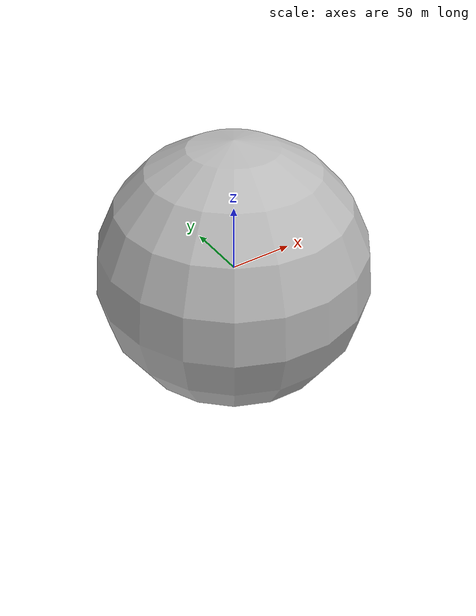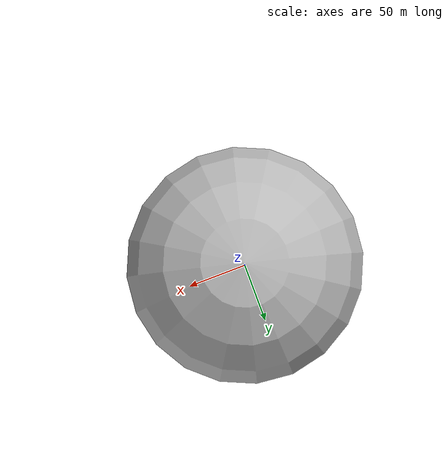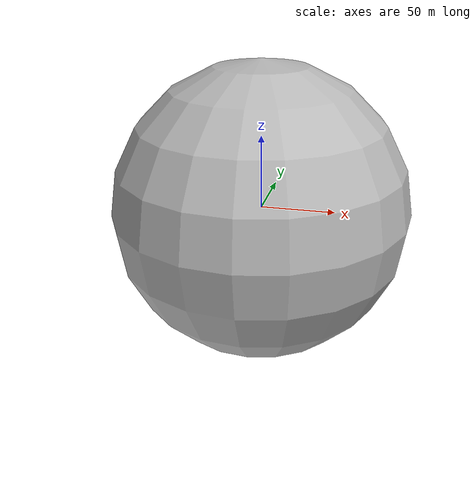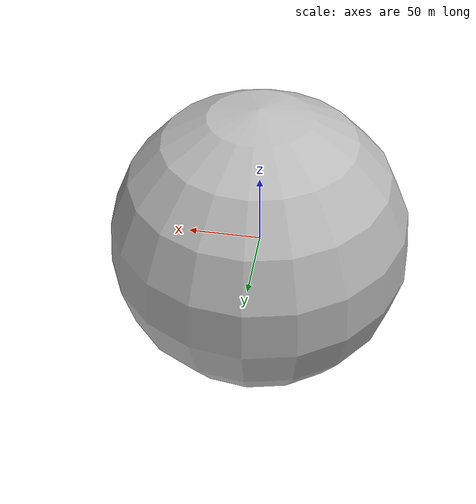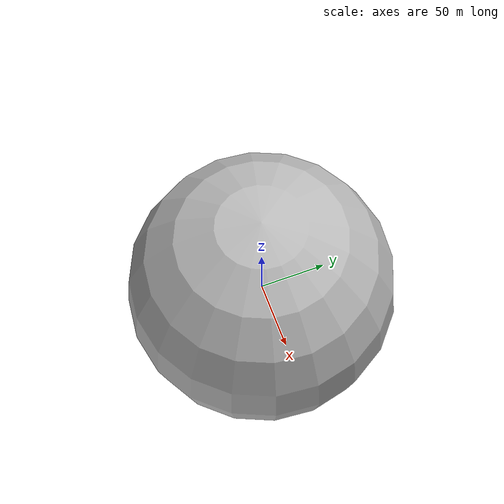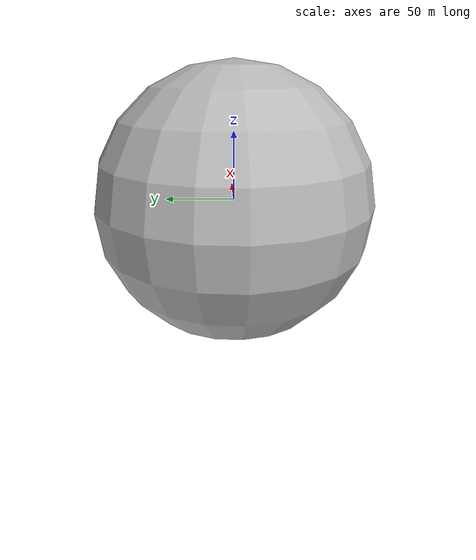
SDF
<?xml version="1.0" ?>
<sdf version="1.6">
  <world name="world_one">
    <plugin
      filename="ignition-gazebo-physics-system"
      name="gz::sim::systems::Physics">
    </plugin>
    <plugin
      filename="ignition-gazebo-scene-broadcaster-system"
      name="gz::sim::systems::SceneBroadcaster">
    </plugin>

    <physics name="default" type="ode">
      <max_step_size>0.001</max_step_size>
      <real_time_factor>2.0</real_time_factor>
    </physics>

    <light type="directional" name="sun">
      <cast_shadows>true</cast_shadows>
      <pose>0 0 10 0 0 0</pose>
      <diffuse>0.8 0.8 0.8 1</diffuse>
      <specular>0.2 0.2 0.2 1</specular>
      <attenuation>
        <range>1000</range>
        <constant>0.9</constant>
        <linear>0.01</linear>
        <quadratic>0.001</quadratic>
      </attenuation>
      <direction>-0.5 0.1 -0.9</direction>
    </light>

    <model name="box">
      <pose>1 2 3 0 0 1</pose>
      <link name="link">
        <collision name="col">
          <geometry>
            <box>
              <size>3 4 5</size>
            </box>
          </geometry>
        </collision>

        <visual name="vis">
          <geometry>
            <box>
              <size>1 2 3</size>
            </box>
          </geometry>
        </visual>
      </link>
    </model>
  </world>

  <world name="world_two">
    <plugin
      filename="ignition-gazebo-physics-system"
      name="gz::sim::systems::Physics">
    </plugin>
    <!-- no SceneBroadcaster -->

    <physics name="default" type="ode">
      <max_step_size>0.005</max_step_size>
      <real_time_factor>0</real_time_factor>
    </physics>

    <light type="directional" name="sun">
      <cast_shadows>true</cast_shadows>
      <pose>0 0 10 0 0 0</pose>
      <diffuse>0.8 0.8 0.8 1</diffuse>
      <specular>0.2 0.2 0.2 1</specular>
      <attenuation>
        <range>1000</range>
        <constant>0.9</constant>
        <linear>0.01</linear>
        <quadratic>0.001</quadratic>
      </attenuation>
      <direction>-0.5 0.1 -0.9</direction>
    </light>

    <model name="cylinder">
      <pose>-1 -2 -3 0 0 1</pose>
      <link name="link">
        <collision name="col">
          <geometry>
            <cylinder>
              <radius>0.2</radius>
              <length>0.1</length>
            </cylinder>
          </geometry>
        </collision>

        <visual name="vis">
          <geometry>
            <cylinder>
              <radius>2.1</radius>
              <length>10.2</length>
            </cylinder>
          </geometry>
        </visual>
      </link>
    </model>
  </world>

  <world name="world_three">
    <plugin
      filename="ignition-gazebo-physics-system"
      name="gz::sim::systems::Physics">
    </plugin>
    <plugin
      filename="ignition-gazebo-scene-broadcaster-system"
      name="gz::sim::systems::SceneBroadcaster">
    </plugin>

    <physics name="default" type="ode">
      <max_step_size>0.02</max_step_size>
      <real_time_factor>0.5</real_time_factor>
    </physics>

    <light type="directional" name="sun">
      <cast_shadows>true</cast_shadows>
      <pose>0 0 10 0 0 0</pose>
      <diffuse>0.8 0.8 0.8 1</diffuse>
      <specular>0.2 0.2 0.2 1</specular>
      <attenuation>
        <range>1000</range>
        <constant>0.9</constant>
        <linear>0.01</linear>
        <quadratic>0.001</quadratic>
      </attenuation>
      <direction>-0.5 0.1 -0.9</direction>
    </light>

    <model name="sphere">
      <pose>0 0 0 0 0 1</pose>
      <link name="link">
        <collision name="col">
          <geometry>
            <sphere>
              <radius>23.4</radius>
            </sphere>
          </geometry>
        </collision>

        <visual name="vis">
          <geometry>
            <sphere>
              <radius>100.2</radius>
            </sphere>
          </geometry>
        </visual>
      </link>
    </model>
  </world>
</sdf>
